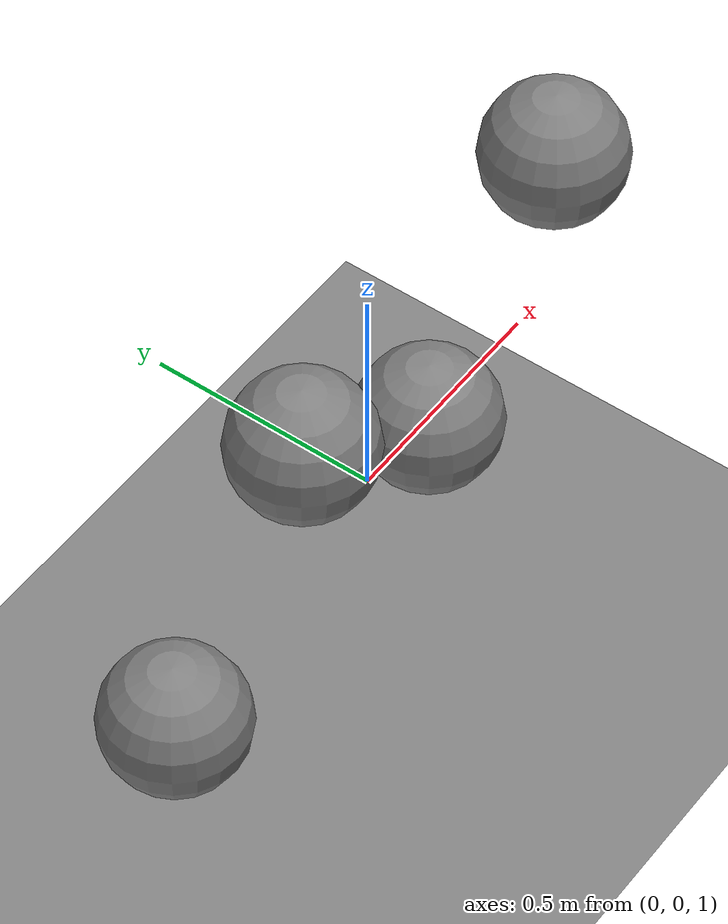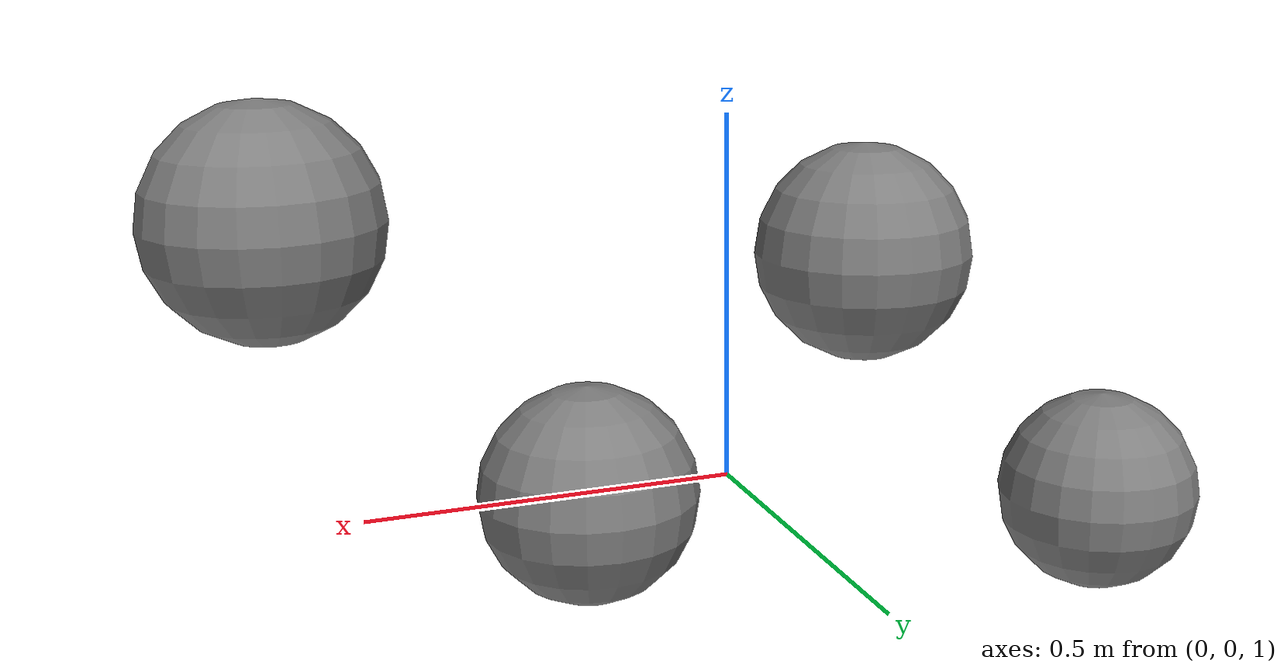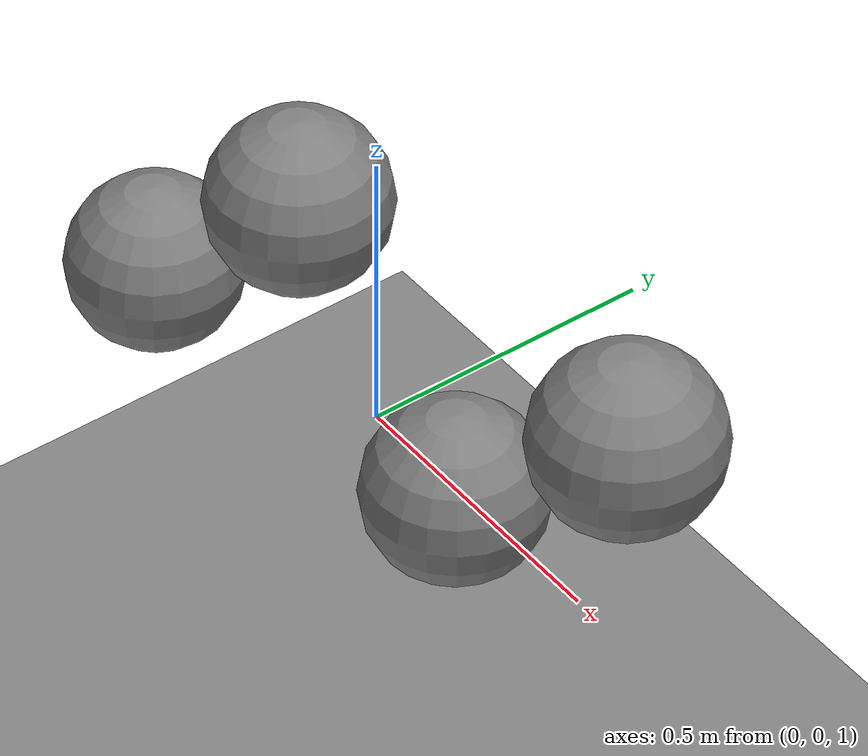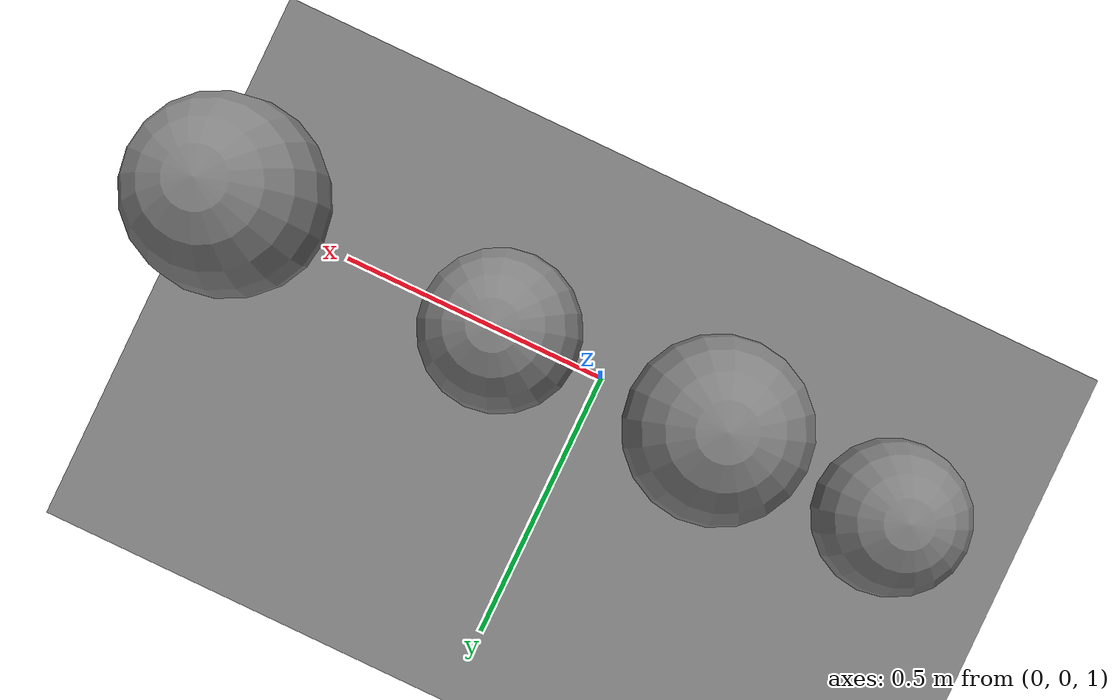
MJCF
<mujoco model="contacts_debug">
  <option timestep="0.005" gravity="0 0 -9.81"/>
  <default>
    <geom density="400"/>
  </default>
  <worldbody>
    <geom name="floor" type="plane" size="3 3 0.1" friction="1 0.1 0.1"/>
    <body name="ball0" pos="-0.60 0.0 0.9">
      <freejoint/>
      <geom type="sphere" size="0.15" friction="1 0.1 0.1"/>
    </body>
    <body name="ball1" pos="-0.20 0.0 1.3">
      <freejoint/>
      <geom type="sphere" size="0.15" friction="1 0.1 0.1"/>
    </body>
    <body name="ball2" pos="0.20 0.0 1.0">
      <freejoint/>
      <geom type="sphere" size="0.15" friction="1 0.1 0.1"/>
    </body>
    <body name="ball3" pos="0.60 0.0 1.4">
      <freejoint/>
      <geom type="sphere" size="0.15" friction="1 0.1 0.1"/>
    </body>
  </worldbody>
</mujoco>
